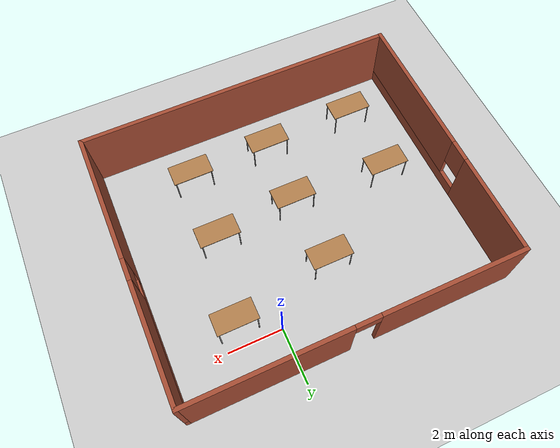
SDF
<sdf version="1.6">
 <world name="default">
  <plugin name="hello" filename="libhello.so"/>
  <light name="sun" type="directional">
   <pose>0 0 10 0 -0 0</pose>
   <diffuse>0.8 0.8 0.8 1</diffuse>
   <specular>0.2 0.2 0.2 1</specular>
   <attenuation>
    <range>1000</range>
    <constant>0.9</constant>
    <linear>0.01</linear>
    <quadratic>0.001</quadratic>
   </attenuation>
   <direction>-0.5 0.1 -0.9</direction>
  </light>
  <model name="ground_plane">
   <static>1</static>
   <link name="link">
    <collision name="collision">
     <geometry><plane><normal>0 0 1</normal><size>100 100</size></plane></geometry>
     <surface>
      <contact><collide_bitmask>65535</collide_bitmask></contact>
      <friction><ode><mu>100</mu><mu2>50</mu2></ode></friction>
     </surface>
    </collision>
    <visual name="visual">
     <cast_shadows>0</cast_shadows>
     <geometry><plane><normal>0 0 1</normal><size>100 100</size></plane></geometry>
     <material>
      <script><uri>file://media/materials/scripts/gazebo.material</uri><name>Gazebo/Grey</name></script>
     </material>
    </visual>
   </link>
  </model>
  <gravity>0 0 -9.8</gravity>
  <magnetic_field>6e-06 2.3e-05 -4.2e-05</magnetic_field>
  <atmosphere type="adiabatic"/>
  <physics name="default_physics" default="0" type="ode">
   <max_step_size>0.001</max_step_size>
   <real_time_factor>1</real_time_factor>
   <real_time_update_rate>1000</real_time_update_rate>
  </physics>
  <scene><ambient>0.4 0.4 0.4 1</ambient><background>0.7 0.7 0.7 1</background><shadows>1</shadows></scene>
  <spherical_coordinates>
   <surface_model>EARTH_WGS84</surface_model>
   <latitude_deg>0</latitude_deg>
   <longitude_deg>0</longitude_deg>
   <elevation>0</elevation>
   <heading_deg>0</heading_deg>
  </spherical_coordinates>
  <model name="costa">
   <pose>-1.97972 -3.43419 0 0 -0 0</pose>
   <link name="Wall_5">
    <pose>-0 4.925 0 0 -0 3.14159</pose>
    <visual name="Wall_5_Visual_0">
     <pose>-3.10525 0 1.25 0 -0 0</pose>
     <geometry><box><size>5.78951 0.15 2.5</size></box></geometry>
     <material>
      <script><uri>file://media/materials/scripts/gazebo.material</uri><name>Gazebo/Bricks</name></script>
      <ambient>1 1 1 1</ambient>
     </material>
     <meta><layer>0</layer></meta>
    </visual>
    <collision name="Wall_5_Collision_0">
     <geometry><box><size>5.78951 0.15 2.5</size></box></geometry>
     <pose>-3.10525 0 1.25 0 -0 0</pose>
    </collision>
    <visual name="Wall_5_Visual_1">
     <pose>3.34475 0 1.25 0 -0 0</pose>
     <geometry><box><size>5.31049 0.15 2.5</size></box></geometry>
     <material>
      <script><uri>file://media/materials/scripts/gazebo.material</uri><name>Gazebo/Bricks</name></script>
      <ambient>1 1 1 1</ambient>
     </material>
     <meta><layer>0</layer></meta>
    </visual>
    <collision name="Wall_5_Collision_1">
     <geometry><box><size>5.31049 0.15 2.5</size></box></geometry>
     <pose>3.34475 0 1.25 0 -0 0</pose>
    </collision>
    <visual name="Wall_5_Visual_2">
     <pose>0.239509 0 2.25 0 -0 0</pose>
     <geometry><box><size>0.9 0.15 0.5</size></box></geometry>
     <material>
      <script><uri>file://media/materials/scripts/gazebo.material</uri><name>Gazebo/Bricks</name></script>
      <ambient>1 1 1 1</ambient>
     </material>
     <meta><layer>0</layer></meta>
    </visual>
    <collision name="Wall_5_Collision_2">
     <geometry><box><size>0.9 0.15 0.5</size></box></geometry>
     <pose>0.239509 0 2.25 0 -0 0</pose>
    </collision>
   </link>
   <link name="Wall_6">
    <pose>-5.925 0 0 0 -0 -1.5708</pose>
    <visual name="Wall_6_Visual_0">
     <pose>-3.13628 0 1.25 0 -0 0</pose>
     <geometry><box><size>3.72744 0.15 2.5</size></box></geometry>
     <material>
      <script><uri>file://media/materials/scripts/gazebo.material</uri><name>Gazebo/Bricks</name></script>
      <ambient>1 1 1 1</ambient>
     </material>
     <meta><layer>0</layer></meta>
    </visual>
    <collision name="Wall_6_Collision_0">
     <geometry><box><size>3.72744 0.15 2.5</size></box></geometry>
     <pose>-3.13628 0 1.25 0 -0 0</pose>
    </collision>
    <visual name="Wall_6_Visual_1">
     <pose>1.86372 0 0.25 0 -0 0</pose>
     <geometry><box><size>6.27256 0.15 0.5</size></box></geometry>
     <material>
      <script><uri>file://media/materials/scripts/gazebo.material</uri><name>Gazebo/Bricks</name></script>
      <ambient>1 1 1 1</ambient>
     </material>
     <meta><layer>0</layer></meta>
    </visual>
    <collision name="Wall_6_Collision_1">
     <geometry><box><size>6.27256 0.15 0.5</size></box></geometry>
     <pose>1.86372 0 0.25 0 -0 0</pose>
    </collision>
    <visual name="Wall_6_Visual_2">
     <pose>2.26372 0 1.5 0 -0 0</pose>
     <geometry><box><size>5.47256 0.15 2</size></box></geometry>
     <material>
      <script><uri>file://media/materials/scripts/gazebo.material</uri><name>Gazebo/Bricks</name></script>
      <ambient>1 1 1 1</ambient>
     </material>
     <meta><layer>0</layer></meta>
    </visual>
    <collision name="Wall_6_Collision_2">
     <geometry><box><size>5.47256 0.15 2</size></box></geometry>
     <pose>2.26372 0 1.5 0 -0 0</pose>
    </collision>
    <visual name="Wall_6_Visual_3">
     <pose>-0.87256 0 1.9 0 -0 0</pose>
     <geometry><box><size>0.8 0.15 1.2</size></box></geometry>
     <material>
      <script><uri>file://media/materials/scripts/gazebo.material</uri><name>Gazebo/Bricks</name></script>
      <ambient>1 1 1 1</ambient>
     </material>
     <meta><layer>0</layer></meta>
    </visual>
    <collision name="Wall_6_Collision_3">
     <geometry><box><size>0.8 0.15 1.2</size></box></geometry>
     <pose>-0.87256 0 1.9 0 -0 0</pose>
    </collision>
   </link>
   <link name="Wall_7">
    <collision name="Wall_7_Collision">
     <geometry><box><size>12 0.15 2.5</size></box></geometry>
     <pose>0 0 1.25 0 -0 0</pose>
    </collision>
    <visual name="Wall_7_Visual">
     <pose>0 0 1.25 0 -0 0</pose>
     <geometry><box><size>12 0.15 2.5</size></box></geometry>
     <material>
      <script><uri>file://media/materials/scripts/gazebo.material</uri><name>Gazebo/Bricks</name></script>
      <ambient>1 1 1 1</ambient>
     </material>
     <meta><layer>0</layer></meta>
    </visual>
    <pose>-0 -4.925 0 0 -0 0</pose>
   </link>
   <link name="Wall_8">
    <pose>5.925 0 0 0 -0 1.5708</pose>
    <visual name="Wall_8_Visual_0">
     <pose>-2.55433 0 1.25 0 -0 0</pose>
     <geometry><box><size>4.89135 0.15 2.5</size></box></geometry>
     <material>
      <script><uri>file://media/materials/scripts/gazebo.material</uri><name>Gazebo/Bricks</name></script>
      <ambient>1 1 1 1</ambient>
     </material>
     <meta><layer>0</layer></meta>
    </visual>
    <collision name="Wall_8_Collision_0">
     <geometry><box><size>4.89135 0.15 2.5</size></box></geometry>
     <pose>-2.55433 0 1.25 0 -0 0</pose>
    </collision>
    <visual name="Wall_8_Visual_1">
     <pose>2.44567 0 0.25 0 -0 0</pose>
     <geometry><box><size>5.10865 0.15 0.5</size></box></geometry>
     <material>
      <script><uri>file://media/materials/scripts/gazebo.material</uri><name>Gazebo/Bricks</name></script>
      <ambient>1 1 1 1</ambient>
     </material>
     <meta><layer>0</layer></meta>
    </visual>
    <collision name="Wall_8_Collision_1">
     <geometry><box><size>5.10865 0.15 0.5</size></box></geometry>
     <pose>2.44567 0 0.25 0 -0 0</pose>
    </collision>
    <visual name="Wall_8_Visual_2">
     <pose>2.84567 0 1.5 0 -0 0</pose>
     <geometry><box><size>4.30865 0.15 2</size></box></geometry>
     <material>
      <script><uri>file://media/materials/scripts/gazebo.material</uri><name>Gazebo/Bricks</name></script>
      <ambient>1 1 1 1</ambient>
     </material>
     <meta><layer>0</layer></meta>
    </visual>
    <collision name="Wall_8_Collision_2">
     <geometry><box><size>4.30865 0.15 2</size></box></geometry>
     <pose>2.84567 0 1.5 0 -0 0</pose>
    </collision>
    <visual name="Wall_8_Visual_3">
     <pose>0.291346 0 1.9 0 -0 0</pose>
     <geometry><box><size>0.8 0.15 1.2</size></box></geometry>
     <material>
      <script><uri>file://media/materials/scripts/gazebo.material</uri><name>Gazebo/Bricks</name></script>
      <ambient>1 1 1 1</ambient>
     </material>
     <meta><layer>0</layer></meta>
    </visual>
    <collision name="Wall_8_Collision_3">
     <geometry><box><size>0.8 0.15 1.2</size></box></geometry>
     <pose>0.291346 0 1.9 0 -0 0</pose>
    </collision>
   </link>
   <static>1</static>
  </model>
  <model name="table">
   <static>1</static>
   <link name="link">
    <collision name="surface">
     <pose>0 0 1 0 -0 0</pose>
     <geometry><box><size>1.5 0.8 0.03</size></box></geometry>
     <surface><friction><ode><mu>0.6</mu><mu2>0.6</mu2></ode></friction></surface>
    </collision>
    <visual name="visual1">
     <pose>0 0 1 0 -0 0</pose>
     <geometry><box><size>1.5 0.8 0.03</size></box></geometry>
     <material>
      <script><uri>file://media/materials/scripts/gazebo.material</uri><name>Gazebo/Wood</name></script>
     </material>
    </visual>
    <collision name="front_left_leg">
     <pose>0.68 0.38 0.5 0 -0 0</pose>
     <geometry><cylinder><radius>0.02</radius><length>1</length></cylinder></geometry>
    </collision>
    <visual name="front_left_leg">
     <pose>0.68 0.38 0.5 0 -0 0</pose>
     <geometry><cylinder><radius>0.02</radius><length>1</length></cylinder></geometry>
     <material>
      <script><uri>file://media/materials/scripts/gazebo.material</uri><name>Gazebo/Grey</name></script>
     </material>
    </visual>
    <collision name="front_right_leg">
     <pose>0.68 -0.38 0.5 0 -0 0</pose>
     <geometry><cylinder><radius>0.02</radius><length>1</length></cylinder></geometry>
    </collision>
    <visual name="front_right_leg">
     <pose>0.68 -0.38 0.5 0 -0 0</pose>
     <geometry><cylinder><radius>0.02</radius><length>1</length></cylinder></geometry>
     <material>
      <script><uri>file://media/materials/scripts/gazebo.material</uri><name>Gazebo/Grey</name></script>
     </material>
    </visual>
    <collision name="back_right_leg">
     <pose>-0.68 -0.38 0.5 0 -0 0</pose>
     <geometry><cylinder><radius>0.02</radius><length>1</length></cylinder></geometry>
    </collision>
    <visual name="back_right_leg">
     <pose>-0.68 -0.38 0.5 0 -0 0</pose>
     <geometry><cylinder><radius>0.02</radius><length>1</length></cylinder></geometry>
     <material>
      <script><uri>file://media/materials/scripts/gazebo.material</uri><name>Gazebo/Grey</name></script>
     </material>
    </visual>
    <collision name="back_left_leg">
     <pose>-0.68 0.38 0.5 0 -0 0</pose>
     <geometry><cylinder><radius>0.02</radius><length>1</length></cylinder></geometry>
    </collision>
    <visual name="back_left_leg">
     <pose>-0.68 0.38 0.5 0 -0 0</pose>
     <geometry><cylinder><radius>0.02</radius><length>1</length></cylinder></geometry>
     <material>
      <script><uri>file://media/materials/scripts/gazebo.material</uri><name>Gazebo/Grey</name></script>
     </material>
    </visual>
   </link>
   <pose>-5.85884 -6.8473 0 0 -0 0</pose>
  </model>
  <model name="table_0">
   <static>1</static>
   <link name="link">
    <collision name="surface">
     <pose>0 0 1 0 -0 0</pose>
     <geometry><box><size>1.5 0.8 0.03</size></box></geometry>
     <surface><friction><ode><mu>0.6</mu><mu2>0.6</mu2></ode></friction></surface>
    </collision>
    <visual name="visual1">
     <pose>0 0 1 0 -0 0</pose>
     <geometry><box><size>1.5 0.8 0.03</size></box></geometry>
     <material>
      <script><uri>file://media/materials/scripts/gazebo.material</uri><name>Gazebo/Wood</name></script>
     </material>
    </visual>
    <collision name="front_left_leg">
     <pose>0.68 0.38 0.5 0 -0 0</pose>
     <geometry><cylinder><radius>0.02</radius><length>1</length></cylinder></geometry>
    </collision>
    <visual name="front_left_leg">
     <pose>0.68 0.38 0.5 0 -0 0</pose>
     <geometry><cylinder><radius>0.02</radius><length>1</length></cylinder></geometry>
     <material>
      <script><uri>file://media/materials/scripts/gazebo.material</uri><name>Gazebo/Grey</name></script>
     </material>
    </visual>
    <collision name="front_right_leg">
     <pose>0.68 -0.38 0.5 0 -0 0</pose>
     <geometry><cylinder><radius>0.02</radius><length>1</length></cylinder></geometry>
    </collision>
    <visual name="front_right_leg">
     <pose>0.68 -0.38 0.5 0 -0 0</pose>
     <geometry><cylinder><radius>0.02</radius><length>1</length></cylinder></geometry>
     <material>
      <script><uri>file://media/materials/scripts/gazebo.material</uri><name>Gazebo/Grey</name></script>
     </material>
    </visual>
    <collision name="back_right_leg">
     <pose>-0.68 -0.38 0.5 0 -0 0</pose>
     <geometry><cylinder><radius>0.02</radius><length>1</length></cylinder></geometry>
    </collision>
    <visual name="back_right_leg">
     <pose>-0.68 -0.38 0.5 0 -0 0</pose>
     <geometry><cylinder><radius>0.02</radius><length>1</length></cylinder></geometry>
     <material>
      <script><uri>file://media/materials/scripts/gazebo.material</uri><name>Gazebo/Grey</name></script>
     </material>
    </visual>
    <collision name="back_left_leg">
     <pose>-0.68 0.38 0.5 0 -0 0</pose>
     <geometry><cylinder><radius>0.02</radius><length>1</length></cylinder></geometry>
    </collision>
    <visual name="back_left_leg">
     <pose>-0.68 0.38 0.5 0 -0 0</pose>
     <geometry><cylinder><radius>0.02</radius><length>1</length></cylinder></geometry>
     <material>
      <script><uri>file://media/materials/scripts/gazebo.material</uri><name>Gazebo/Grey</name></script>
     </material>
    </visual>
   </link>
   <pose>-2.36344 -6.75186 0 0 -0 0</pose>
  </model>
  <model name="table_1">
   <static>1</static>
   <link name="link">
    <collision name="surface">
     <pose>0 0 1 0 -0 0</pose>
     <geometry><box><size>1.5 0.8 0.03</size></box></geometry>
     <surface><friction><ode><mu>0.6</mu><mu2>0.6</mu2></ode></friction></surface>
    </collision>
    <visual name="visual1">
     <pose>0 0 1 0 -0 0</pose>
     <geometry><box><size>1.5 0.8 0.03</size></box></geometry>
     <material>
      <script><uri>file://media/materials/scripts/gazebo.material</uri><name>Gazebo/Wood</name></script>
     </material>
    </visual>
    <collision name="front_left_leg">
     <pose>0.68 0.38 0.5 0 -0 0</pose>
     <geometry><cylinder><radius>0.02</radius><length>1</length></cylinder></geometry>
    </collision>
    <visual name="front_left_leg">
     <pose>0.68 0.38 0.5 0 -0 0</pose>
     <geometry><cylinder><radius>0.02</radius><length>1</length></cylinder></geometry>
     <material>
      <script><uri>file://media/materials/scripts/gazebo.material</uri><name>Gazebo/Grey</name></script>
     </material>
    </visual>
    <collision name="front_right_leg">
     <pose>0.68 -0.38 0.5 0 -0 0</pose>
     <geometry><cylinder><radius>0.02</radius><length>1</length></cylinder></geometry>
    </collision>
    <visual name="front_right_leg">
     <pose>0.68 -0.38 0.5 0 -0 0</pose>
     <geometry><cylinder><radius>0.02</radius><length>1</length></cylinder></geometry>
     <material>
      <script><uri>file://media/materials/scripts/gazebo.material</uri><name>Gazebo/Grey</name></script>
     </material>
    </visual>
    <collision name="back_right_leg">
     <pose>-0.68 -0.38 0.5 0 -0 0</pose>
     <geometry><cylinder><radius>0.02</radius><length>1</length></cylinder></geometry>
    </collision>
    <visual name="back_right_leg">
     <pose>-0.68 -0.38 0.5 0 -0 0</pose>
     <geometry><cylinder><radius>0.02</radius><length>1</length></cylinder></geometry>
     <material>
      <script><uri>file://media/materials/scripts/gazebo.material</uri><name>Gazebo/Grey</name></script>
     </material>
    </visual>
    <collision name="back_left_leg">
     <pose>-0.68 0.38 0.5 0 -0 0</pose>
     <geometry><cylinder><radius>0.02</radius><length>1</length></cylinder></geometry>
    </collision>
    <visual name="back_left_leg">
     <pose>-0.68 0.38 0.5 0 -0 0</pose>
     <geometry><cylinder><radius>0.02</radius><length>1</length></cylinder></geometry>
     <material>
      <script><uri>file://media/materials/scripts/gazebo.material</uri><name>Gazebo/Grey</name></script>
     </material>
    </visual>
   </link>
   <pose>0.749081 -6.64416 0 0 -0 0</pose>
  </model>
  <model name="table_2">
   <static>1</static>
   <link name="link">
    <collision name="surface">
     <pose>0 0 1 0 -0 0</pose>
     <geometry><box><size>1.5 0.8 0.03</size></box></geometry>
     <surface><friction><ode><mu>0.6</mu><mu2>0.6</mu2></ode></friction></surface>
    </collision>
    <visual name="visual1">
     <pose>0 0 1 0 -0 0</pose>
     <geometry><box><size>1.5 0.8 0.03</size></box></geometry>
     <material>
      <script><uri>file://media/materials/scripts/gazebo.material</uri><name>Gazebo/Wood</name></script>
     </material>
    </visual>
    <collision name="front_left_leg">
     <pose>0.68 0.38 0.5 0 -0 0</pose>
     <geometry><cylinder><radius>0.02</radius><length>1</length></cylinder></geometry>
    </collision>
    <visual name="front_left_leg">
     <pose>0.68 0.38 0.5 0 -0 0</pose>
     <geometry><cylinder><radius>0.02</radius><length>1</length></cylinder></geometry>
     <material>
      <script><uri>file://media/materials/scripts/gazebo.material</uri><name>Gazebo/Grey</name></script>
     </material>
    </visual>
    <collision name="front_right_leg">
     <pose>0.68 -0.38 0.5 0 -0 0</pose>
     <geometry><cylinder><radius>0.02</radius><length>1</length></cylinder></geometry>
    </collision>
    <visual name="front_right_leg">
     <pose>0.68 -0.38 0.5 0 -0 0</pose>
     <geometry><cylinder><radius>0.02</radius><length>1</length></cylinder></geometry>
     <material>
      <script><uri>file://media/materials/scripts/gazebo.material</uri><name>Gazebo/Grey</name></script>
     </material>
    </visual>
    <collision name="back_right_leg">
     <pose>-0.68 -0.38 0.5 0 -0 0</pose>
     <geometry><cylinder><radius>0.02</radius><length>1</length></cylinder></geometry>
    </collision>
    <visual name="back_right_leg">
     <pose>-0.68 -0.38 0.5 0 -0 0</pose>
     <geometry><cylinder><radius>0.02</radius><length>1</length></cylinder></geometry>
     <material>
      <script><uri>file://media/materials/scripts/gazebo.material</uri><name>Gazebo/Grey</name></script>
     </material>
    </visual>
    <collision name="back_left_leg">
     <pose>-0.68 0.38 0.5 0 -0 0</pose>
     <geometry><cylinder><radius>0.02</radius><length>1</length></cylinder></geometry>
    </collision>
    <visual name="back_left_leg">
     <pose>-0.68 0.38 0.5 0 -0 0</pose>
     <geometry><cylinder><radius>0.02</radius><length>1</length></cylinder></geometry>
     <material>
      <script><uri>file://media/materials/scripts/gazebo.material</uri><name>Gazebo/Grey</name></script>
     </material>
    </visual>
   </link>
   <pose>0.763106 -3.9128 0 0 -0 0</pose>
  </model>
  <model name="table_3">
   <static>1</static>
   <link name="link">
    <collision name="surface">
     <pose>0 0 1 0 -0 0</pose>
     <geometry><box><size>1.5 0.8 0.03</size></box></geometry>
     <surface><friction><ode><mu>0.6</mu><mu2>0.6</mu2></ode></friction></surface>
    </collision>
    <visual name="visual1">
     <pose>0 0 1 0 -0 0</pose>
     <geometry><box><size>1.5 0.8 0.03</size></box></geometry>
     <material>
      <script><uri>file://media/materials/scripts/gazebo.material</uri><name>Gazebo/Wood</name></script>
     </material>
    </visual>
    <collision name="front_left_leg">
     <pose>0.68 0.38 0.5 0 -0 0</pose>
     <geometry><cylinder><radius>0.02</radius><length>1</length></cylinder></geometry>
    </collision>
    <visual name="front_left_leg">
     <pose>0.68 0.38 0.5 0 -0 0</pose>
     <geometry><cylinder><radius>0.02</radius><length>1</length></cylinder></geometry>
     <material>
      <script><uri>file://media/materials/scripts/gazebo.material</uri><name>Gazebo/Grey</name></script>
     </material>
    </visual>
    <collision name="front_right_leg">
     <pose>0.68 -0.38 0.5 0 -0 0</pose>
     <geometry><cylinder><radius>0.02</radius><length>1</length></cylinder></geometry>
    </collision>
    <visual name="front_right_leg">
     <pose>0.68 -0.38 0.5 0 -0 0</pose>
     <geometry><cylinder><radius>0.02</radius><length>1</length></cylinder></geometry>
     <material>
      <script><uri>file://media/materials/scripts/gazebo.material</uri><name>Gazebo/Grey</name></script>
     </material>
    </visual>
    <collision name="back_right_leg">
     <pose>-0.68 -0.38 0.5 0 -0 0</pose>
     <geometry><cylinder><radius>0.02</radius><length>1</length></cylinder></geometry>
    </collision>
    <visual name="back_right_leg">
     <pose>-0.68 -0.38 0.5 0 -0 0</pose>
     <geometry><cylinder><radius>0.02</radius><length>1</length></cylinder></geometry>
     <material>
      <script><uri>file://media/materials/scripts/gazebo.material</uri><name>Gazebo/Grey</name></script>
     </material>
    </visual>
    <collision name="back_left_leg">
     <pose>-0.68 0.38 0.5 0 -0 0</pose>
     <geometry><cylinder><radius>0.02</radius><length>1</length></cylinder></geometry>
    </collision>
    <visual name="back_left_leg">
     <pose>-0.68 0.38 0.5 0 -0 0</pose>
     <geometry><cylinder><radius>0.02</radius><length>1</length></cylinder></geometry>
     <material>
      <script><uri>file://media/materials/scripts/gazebo.material</uri><name>Gazebo/Grey</name></script>
     </material>
    </visual>
   </link>
   <pose>-2.29044 -4.20697 0 0 -0 0</pose>
  </model>
  <model name="table_4">
   <static>1</static>
   <link name="link">
    <collision name="surface">
     <pose>0 0 1 0 -0 0</pose>
     <geometry><box><size>1.5 0.8 0.03</size></box></geometry>
     <surface><friction><ode><mu>0.6</mu><mu2>0.6</mu2></ode></friction></surface>
    </collision>
    <visual name="visual1">
     <pose>0 0 1 0 -0 0</pose>
     <geometry><box><size>1.5 0.8 0.03</size></box></geometry>
     <material>
      <script><uri>file://media/materials/scripts/gazebo.material</uri><name>Gazebo/Wood</name></script>
     </material>
    </visual>
    <collision name="front_left_leg">
     <pose>0.68 0.38 0.5 0 -0 0</pose>
     <geometry><cylinder><radius>0.02</radius><length>1</length></cylinder></geometry>
    </collision>
    <visual name="front_left_leg">
     <pose>0.68 0.38 0.5 0 -0 0</pose>
     <geometry><cylinder><radius>0.02</radius><length>1</length></cylinder></geometry>
     <material>
      <script><uri>file://media/materials/scripts/gazebo.material</uri><name>Gazebo/Grey</name></script>
     </material>
    </visual>
    <collision name="front_right_leg">
     <pose>0.68 -0.38 0.5 0 -0 0</pose>
     <geometry><cylinder><radius>0.02</radius><length>1</length></cylinder></geometry>
    </collision>
    <visual name="front_right_leg">
     <pose>0.68 -0.38 0.5 0 -0 0</pose>
     <geometry><cylinder><radius>0.02</radius><length>1</length></cylinder></geometry>
     <material>
      <script><uri>file://media/materials/scripts/gazebo.material</uri><name>Gazebo/Grey</name></script>
     </material>
    </visual>
    <collision name="back_right_leg">
     <pose>-0.68 -0.38 0.5 0 -0 0</pose>
     <geometry><cylinder><radius>0.02</radius><length>1</length></cylinder></geometry>
    </collision>
    <visual name="back_right_leg">
     <pose>-0.68 -0.38 0.5 0 -0 0</pose>
     <geometry><cylinder><radius>0.02</radius><length>1</length></cylinder></geometry>
     <material>
      <script><uri>file://media/materials/scripts/gazebo.material</uri><name>Gazebo/Grey</name></script>
     </material>
    </visual>
    <collision name="back_left_leg">
     <pose>-0.68 0.38 0.5 0 -0 0</pose>
     <geometry><cylinder><radius>0.02</radius><length>1</length></cylinder></geometry>
    </collision>
    <visual name="back_left_leg">
     <pose>-0.68 0.38 0.5 0 -0 0</pose>
     <geometry><cylinder><radius>0.02</radius><length>1</length></cylinder></geometry>
     <material>
      <script><uri>file://media/materials/scripts/gazebo.material</uri><name>Gazebo/Grey</name></script>
     </material>
    </visual>
   </link>
   <pose>-6.00232 -4.03885 0 0 -0 0</pose>
  </model>
  <model name="table_5">
   <static>1</static>
   <link name="link">
    <collision name="surface">
     <pose>0 0 1 0 -0 0</pose>
     <geometry><box><size>1.5 0.8 0.03</size></box></geometry>
     <surface><friction><ode><mu>0.6</mu><mu2>0.6</mu2></ode></friction></surface>
    </collision>
    <visual name="visual1">
     <pose>0 0 1 0 -0 0</pose>
     <geometry><box><size>1.5 0.8 0.03</size></box></geometry>
     <material>
      <script><uri>file://media/materials/scripts/gazebo.material</uri><name>Gazebo/Wood</name></script>
     </material>
    </visual>
    <collision name="front_left_leg">
     <pose>0.68 0.38 0.5 0 -0 0</pose>
     <geometry><cylinder><radius>0.02</radius><length>1</length></cylinder></geometry>
    </collision>
    <visual name="front_left_leg">
     <pose>0.68 0.38 0.5 0 -0 0</pose>
     <geometry><cylinder><radius>0.02</radius><length>1</length></cylinder></geometry>
     <material>
      <script><uri>file://media/materials/scripts/gazebo.material</uri><name>Gazebo/Grey</name></script>
     </material>
    </visual>
    <collision name="front_right_leg">
     <pose>0.68 -0.38 0.5 0 -0 0</pose>
     <geometry><cylinder><radius>0.02</radius><length>1</length></cylinder></geometry>
    </collision>
    <visual name="front_right_leg">
     <pose>0.68 -0.38 0.5 0 -0 0</pose>
     <geometry><cylinder><radius>0.02</radius><length>1</length></cylinder></geometry>
     <material>
      <script><uri>file://media/materials/scripts/gazebo.material</uri><name>Gazebo/Grey</name></script>
     </material>
    </visual>
    <collision name="back_right_leg">
     <pose>-0.68 -0.38 0.5 0 -0 0</pose>
     <geometry><cylinder><radius>0.02</radius><length>1</length></cylinder></geometry>
    </collision>
    <visual name="back_right_leg">
     <pose>-0.68 -0.38 0.5 0 -0 0</pose>
     <geometry><cylinder><radius>0.02</radius><length>1</length></cylinder></geometry>
     <material>
      <script><uri>file://media/materials/scripts/gazebo.material</uri><name>Gazebo/Grey</name></script>
     </material>
    </visual>
    <collision name="back_left_leg">
     <pose>-0.68 0.38 0.5 0 -0 0</pose>
     <geometry><cylinder><radius>0.02</radius><length>1</length></cylinder></geometry>
    </collision>
    <visual name="back_left_leg">
     <pose>-0.68 0.38 0.5 0 -0 0</pose>
     <geometry><cylinder><radius>0.02</radius><length>1</length></cylinder></geometry>
     <material>
      <script><uri>file://media/materials/scripts/gazebo.material</uri><name>Gazebo/Grey</name></script>
     </material>
    </visual>
   </link>
   <pose>1.36539 -0.789261 0 0 -0 0</pose>
  </model>
  <model name="table_6">
   <static>1</static>
   <link name="link">
    <collision name="surface">
     <pose>0 0 1 0 -0 0</pose>
     <geometry><box><size>1.5 0.8 0.03</size></box></geometry>
     <surface><friction><ode><mu>0.6</mu><mu2>0.6</mu2></ode></friction></surface>
    </collision>
    <visual name="visual1">
     <pose>0 0 1 0 -0 0</pose>
     <geometry><box><size>1.5 0.8 0.03</size></box></geometry>
     <material>
      <script><uri>file://media/materials/scripts/gazebo.material</uri><name>Gazebo/Wood</name></script>
     </material>
    </visual>
    <collision name="front_left_leg">
     <pose>0.68 0.38 0.5 0 -0 0</pose>
     <geometry><cylinder><radius>0.02</radius><length>1</length></cylinder></geometry>
    </collision>
    <visual name="front_left_leg">
     <pose>0.68 0.38 0.5 0 -0 0</pose>
     <geometry><cylinder><radius>0.02</radius><length>1</length></cylinder></geometry>
     <material>
      <script><uri>file://media/materials/scripts/gazebo.material</uri><name>Gazebo/Grey</name></script>
     </material>
    </visual>
    <collision name="front_right_leg">
     <pose>0.68 -0.38 0.5 0 -0 0</pose>
     <geometry><cylinder><radius>0.02</radius><length>1</length></cylinder></geometry>
    </collision>
    <visual name="front_right_leg">
     <pose>0.68 -0.38 0.5 0 -0 0</pose>
     <geometry><cylinder><radius>0.02</radius><length>1</length></cylinder></geometry>
     <material>
      <script><uri>file://media/materials/scripts/gazebo.material</uri><name>Gazebo/Grey</name></script>
     </material>
    </visual>
    <collision name="back_right_leg">
     <pose>-0.68 -0.38 0.5 0 -0 0</pose>
     <geometry><cylinder><radius>0.02</radius><length>1</length></cylinder></geometry>
    </collision>
    <visual name="back_right_leg">
     <pose>-0.68 -0.38 0.5 0 -0 0</pose>
     <geometry><cylinder><radius>0.02</radius><length>1</length></cylinder></geometry>
     <material>
      <script><uri>file://media/materials/scripts/gazebo.material</uri><name>Gazebo/Grey</name></script>
     </material>
    </visual>
    <collision name="back_left_leg">
     <pose>-0.68 0.38 0.5 0 -0 0</pose>
     <geometry><cylinder><radius>0.02</radius><length>1</length></cylinder></geometry>
    </collision>
    <visual name="back_left_leg">
     <pose>-0.68 0.38 0.5 0 -0 0</pose>
     <geometry><cylinder><radius>0.02</radius><length>1</length></cylinder></geometry>
     <material>
      <script><uri>file://media/materials/scripts/gazebo.material</uri><name>Gazebo/Grey</name></script>
     </material>
    </visual>
   </link>
   <pose>-2.47255 -1.55963 0 0 -0 0</pose>
  </model>
 </world>
</sdf>
